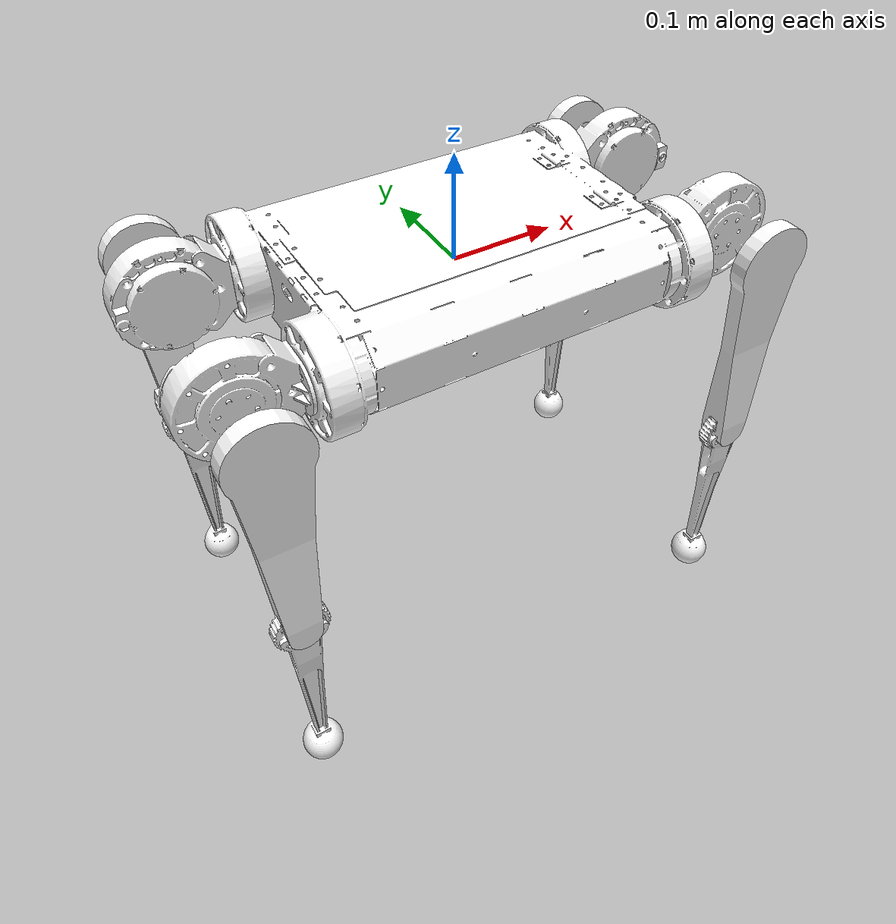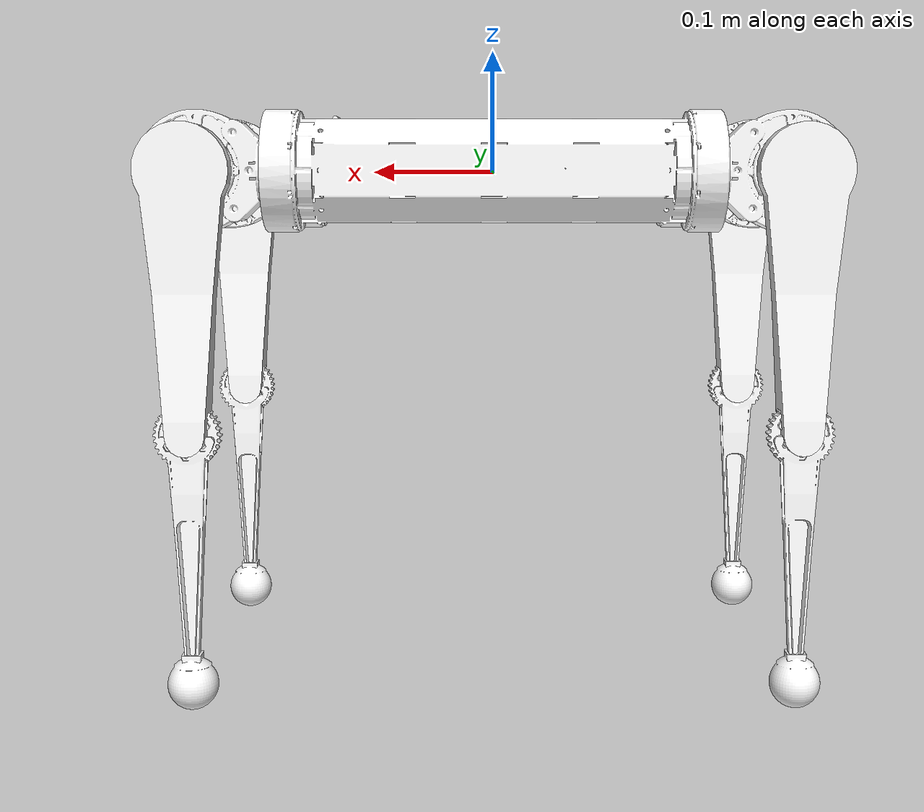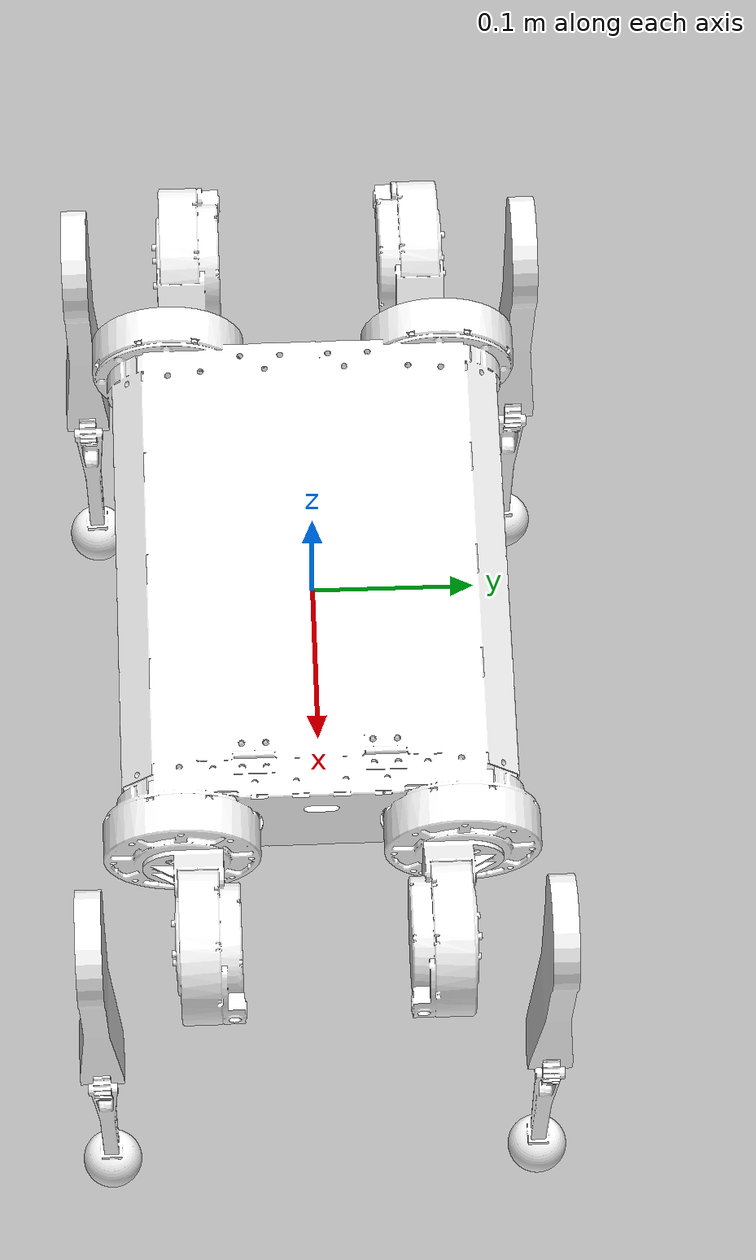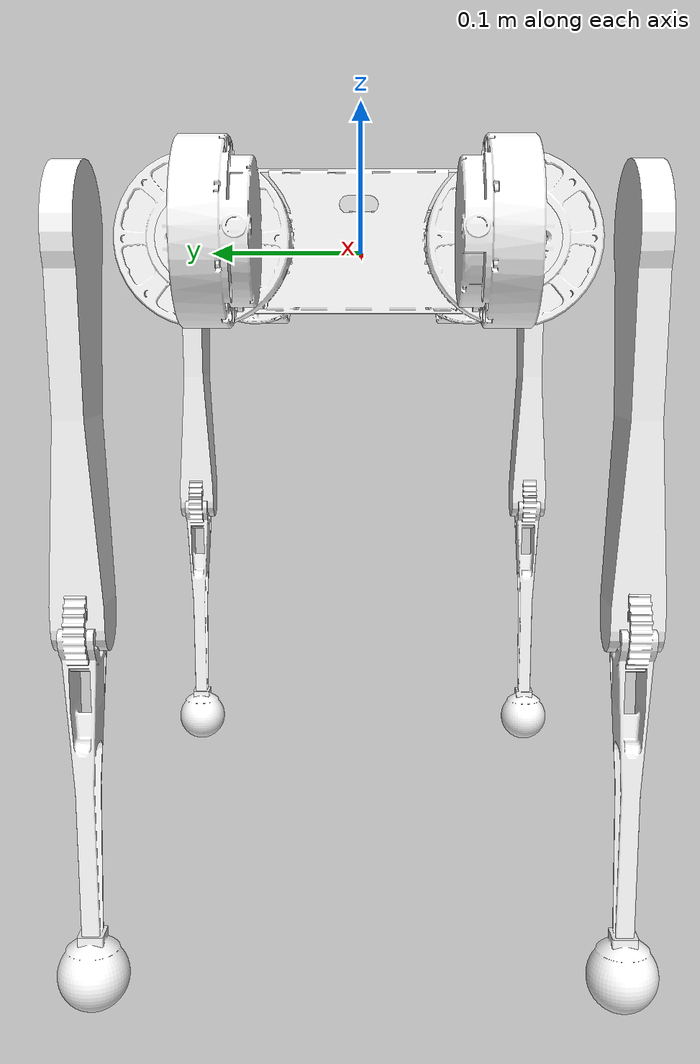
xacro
<?xml version="1.0" encoding="utf-8"?>

<robot name="dog"
    xmlns:xacro="http://www.ros.org/wiki/xacro">

    <xacro:arg name="add_tail" default="false" />

    <xacro:include filename="$(find dog_model)/urdf/dog.xacro" />
    <xacro:include filename="$(find dog_model)/urdf/dog.gazebo" />

    <xacro:build_dog />
    <xacro:dog_gazebo_config />

    <xacro:if value="$(arg add_tail)" >
        <xacro:include filename="$(find dog_model)/urdf/tail.xacro" />
        <xacro:include filename="$(find dog_model)/urdf/tail.gazebo" />

        <xacro:attach_tail parent_name="torso" />
        <xacro:tail_gazebo_config />
    </xacro:if>

</robot>

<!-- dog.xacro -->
<robot
    xmlns:xacro="http://www.ros.org/wiki/xacro">

    <xacro:macro name="build_dog">

        <xacro:include filename="$(find dog_model)/urdf/defines.xacro" />
        <xacro:include filename="$(find dog_model)/urdf/leg.xacro" />
        <xacro:include filename="$(find dog_model)/urdf/materials.xacro" />

        <link
            name="torso">
            <inertial>
                <origin
                    xyz="0.00046238 0  0.00010840"
                    rpy="0 0 0" />
                <mass
                    value="3.588" />
                <inertia
                    ixx="0.02923416"
                    ixy="0"
                    ixz="0.00007328"
                    iyy="0.07723917"
                    iyz="0"
                    izz="0.10235971" />
            </inertial>
            <visual>
                <origin
                    xyz="0 0 0"
                    rpy="0 0 0" />
                <geometry>
                    <mesh
                        filename="package://dog_model/meshes/visualization/torso.stl" />
                </geometry>
                <material
                    name="white" />
            </visual>
            <collision>
                <origin
                    xyz="0 0 0"
                    rpy="0 0 0" />
                <geometry>
                    <box size="${TORSO_COLL_LEN} ${TORSO_COLL_WIDTH} ${TORSO_COLL_HEIGHT}" />
                </geometry>
            </collision>
        </link>

        <link name="fl_base">
            <xacro:dummy_inertial />
        </link>

        <joint name="fl_base_fixed" type="fixed">
            <parent link="torso" />
            <child link="fl_base" />
            <origin xyz="${HIP_POS_X} ${HIP_POS_Y} 0" rpy="0 0 0" />
        </joint>

        <xacro:attach_leg
            leg_name="fl" parent_name="fl_base" xflip="1" yflip="1" />

        <link name="fr_base">
            <xacro:dummy_inertial />
        </link>

        <joint name="fr_base_fixed" type="fixed">
            <parent link="torso" />
            <child link="fr_base" />
            <origin xyz="${HIP_POS_X} ${- HIP_POS_Y} 0" rpy="0 0 0" />
        </joint>

        <xacro:attach_leg
            leg_name="fr" parent_name="fr_base" xflip="1" yflip="-1" />

        <link name="bl_base">
            <xacro:dummy_inertial />
        </link>

        <joint name="bl_base_fixed" type="fixed">
            <parent link="torso" />
            <child link="bl_base" />
            <origin xyz="${- HIP_POS_X} ${HIP_POS_Y} 0" rpy="0 0 0" />
        </joint>

        <xacro:attach_leg
            leg_name="bl" parent_name="bl_base" xflip="-1" yflip="1" />

        <link name="br_base">
            <xacro:dummy_inertial />
        </link>

        <joint name="br_base_fixed" type="fixed">
            <parent link="torso" />
            <child link="br_base" />
            <origin xyz="${- HIP_POS_X} ${- HIP_POS_Y} 0" rpy="0 0 0" />
        </joint>

        <xacro:attach_leg
            leg_name="br" parent_name="br_base" xflip="-1" yflip="-1" />

    </xacro:macro>

</robot>

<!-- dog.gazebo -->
<robot
    xmlns:xacro="http://www.ros.org/wiki/xacro">

    <xacro:macro name="dog_gazebo_config">

        <xacro:arg name="hang_up" default="false" />

        <!-- this joint is only for debugging/testing purpose -->
        <xacro:if value="$(arg hang_up)" >
            <link name="world" />
            <joint
                name="fixed_body"
                type="fixed">
                <origin
                    xyz="0 0 0.5"
                    rpy="0 0 0" />
                <parent link="world" />
                <child link="dummy" />
            </joint>
        </xacro:if>

        <link name="dummy" />
        <joint name="dummy_joint" type="fixed">
            <parent link="dummy" />
            <child link="torso" />
        </joint>

        <gazebo>
            <!-- gazebo_ros_control will load controller for the motor -->
            <plugin name="gazebo_ros_control" filename="libgazebo_ros_control.so">
                <robotNamespace>/dog</robotNamespace>
                <robotSimType>gazebo_ros_control/DefaultRobotHWSim</robotSimType>
                <legacyModeNS>true</legacyModeNS>
            </plugin>

            <!-- p3d plugin provides odometry, which can be used as ground truth & converted into tf -->
            <plugin name="p3d_base_controller" filename="libgazebo_ros_p3d.so">
                <alwaysOn>true</alwaysOn>
                <updateRate>1000.0</updateRate>
                <bodyName>torso</bodyName>
                <topicName>ground_truth/state</topicName>
                <frameName>world</frameName>
                <xyzOffsets>0 0 0</xyzOffsets>
                <rpyOffsets>0 0 0</rpyOffsets>
            </plugin>
        </gazebo>

        <gazebo reference="torso">
            <gravity>true</gravity>
            <sensor name="imu_sensor" type="imu">
                <always_on>true</always_on>
                <update_rate>500</update_rate>
                <visualize>true</visualize>
                <topic>__default_topic__</topic>
                <plugin filename="libgazebo_ros_imu_sensor.so" name="imu_plugin">
                    <topicName>/dog/imu</topicName>
                    <bodyName>torso</bodyName>
                    <updateRateHZ>500</updateRateHZ>
                    <gaussianNoise>0.1</gaussianNoise>
                    <xyzOffset>0 0 0</xyzOffset>
                    <rpyOffset>0 0 0</rpyOffset>
                    <frameName>torso</frameName>
                </plugin>
            </sensor>
            <selfCollide>true</selfCollide>
            <kp>1000.0</kp>
            <kd>100.0</kd>
        </gazebo>

        <xacro:macro name="EnableSelfCollide" params="link">
            <gazebo reference="${link}">
                <selfCollide>true</selfCollide>
                <kp>1000000.0</kp>
                <kd>100.0</kd>
            </gazebo>
        </xacro:macro>

        <xacro:macro name="AddContactSensor" params="prefix">
            <gazebo reference="${prefix}_foot">
                <sensor type="contact" name="${prefix}_foot_contact_sensor">
                    <update_rate>1000.0</update_rate>
                    <contact>
                        <collision>${prefix}_shin_fixed_joint_lump__${prefix}_foot_collision_collision_1</collision>
                    </contact>
                    <plugin name="${prefix}_foot_gazebo_ros_bumper_controller" filename="libgazebo_ros_bumper.so">
                        <alwaysOn>true</alwaysOn>
                        <frameName>${prefix}_foot</frameName>
                        <updateRate>1000</updateRate>
                        <bumperTopicName>/ground_truth/${prefix}_foot_contact</bumperTopicName>
                    </plugin>
                </sensor>
            </gazebo>
        </xacro:macro>

        <xacro:macro name="AddTrans" params="joint id">
            <transmission name="trans${id}">
                <type>transmission_interface/SimpleTransmission</type>
                <joint name="${joint}">
                    <hardwareInterface>hardware_interface/EffortJointInterface</hardwareInterface>
                </joint>
                <actuator name="motor${id}">
                    <hardwareInterface>hardware_interface/EffortJointInterface</hardwareInterface>
                    <mechanicalReduction>1</mechanicalReduction>
                </actuator>
            </transmission>
        </xacro:macro>

        <xacro:EnableSelfCollide link="fl_hip" />
        <xacro:EnableSelfCollide link="fl_thigh" />
        <xacro:EnableSelfCollide link="fl_shin" />
        <xacro:EnableSelfCollide link="fr_hip" />
        <xacro:EnableSelfCollide link="fr_thigh" />
        <xacro:EnableSelfCollide link="fr_shin" />
        <xacro:EnableSelfCollide link="bl_hip" />
        <xacro:EnableSelfCollide link="bl_thigh" />
        <xacro:EnableSelfCollide link="bl_shin" />
        <xacro:EnableSelfCollide link="br_hip" />
        <xacro:EnableSelfCollide link="br_thigh" />
        <xacro:EnableSelfCollide link="br_shin" />

        <xacro:EnableSelfCollide link="fl_foot" />
        <xacro:EnableSelfCollide link="fr_foot" />
        <xacro:EnableSelfCollide link="bl_foot" />
        <xacro:EnableSelfCollide link="br_foot" />

        <xacro:AddContactSensor prefix="fl" />
        <xacro:AddContactSensor prefix="fr" />
        <xacro:AddContactSensor prefix="bl" />
        <xacro:AddContactSensor prefix="br" />

        <xacro:AddTrans joint="fl_hip_x" id="1" />
        <xacro:AddTrans joint="fl_hip_y" id="2" />
        <xacro:AddTrans joint="fl_knee"  id="3" />
        <xacro:AddTrans joint="fr_hip_x" id="4" />
        <xacro:AddTrans joint="fr_hip_y" id="5" />
        <xacro:AddTrans joint="fr_knee"  id="6" />
        <xacro:AddTrans joint="bl_hip_x" id="7" />
        <xacro:AddTrans joint="bl_hip_y" id="8" />
        <xacro:AddTrans joint="bl_knee"  id="9" />
        <xacro:AddTrans joint="br_hip_x" id="10" />
        <xacro:AddTrans joint="br_hip_y" id="11" />
        <xacro:AddTrans joint="br_knee"  id="12" />

    </xacro:macro>
</robot>

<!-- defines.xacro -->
<robot
    xmlns:xacro="http://www.ros.org/wiki/xacro">

    <xacro:property name="M_PI" value="3.1415926535897931" />

    <xacro:property name="HIP_POS_X" value="0.2335" />
    <xacro:property name="HIP_POS_Y" value="0.0855" />
    <xacro:property name="HIP_LEN" value="0.0575" />
    <xacro:property name="THIGH_LEN" value="0.2" />
    <xacro:property name="SHIN_LEN" value="0.195" />
    <xacro:property name="FOOT_RADIUS" value="0.0195" />
    <xacro:property name="TAIL_POS_X" value="-0.057" />
    <xacro:property name="TAIL_POS_Z" value="0.0805" />
    <xacro:property name="TAIL_ROOT_LEN" value="0.15" />
    <xacro:property name="TAIL_MID_LEN" value="0.255" />
    <xacro:property name="TAIL_END_LEN" value="0.2" />

    <xacro:property name="MOTOR_FRICTION" value="0.09" />
    <xacro:property name="MOTOR_DAMPING" value="0.04" />
    <xacro:property name="MOTOR_TORQUE_MAX" value="17" />
    <xacro:property name="MOTOR_VELOCITY_MAX" value="40" />
    <xacro:property name="MOTOR_TORQUE_KP" value="100" />
    <xacro:property name="MOTOR_TORQUE_KD" value="1000" />

    <xacro:property name="TORSO_COLL_LEN" value="0.31" />
    <xacro:property name="TORSO_COLL_WIDTH" value="0.201" />
    <xacro:property name="TORSO_COLL_HEIGHT" value="0.08" />
    <xacro:property name="MOTOR_COLL_RADIUS" value="0.05" />
    <xacro:property name="HIP_COLL_LEN" value="0.094" />
    <xacro:property name="THIGH_COLL_LEN" value="0.272" />
    <xacro:property name="THIGH_COLL_WIDTH" value="0.072" />
    <xacro:property name="THIGH_COLL_HEIGHT" value="0.028" />
    <xacro:property name="SHIN_COLL_RADIUS" value="0.01" />
    <xacro:property name="TAIL_ROOT_COLL_LEN" value="0.198" />
    <xacro:property name="TAIL_ROOT_COLL_WIDTH" value="0.01" />
    <xacro:property name="TAIL_ROOT_COLL_HEIGHT" value="0.015" />
    <xacro:property name="TAIL_ROOT_COLL_CENTER_X" value="-0.03" />
    <xacro:property name="TAIL_ROOT_COLL_CENTER_Z" value="-0.0115" />
    <xacro:property name="TAIL_MID_COLL_LEN" value="0.31" />
    <xacro:property name="TAIL_MID_COLL_WIDTH" value="0.04" />
    <xacro:property name="TAIL_MID_COLL_HEIGHT" value="0.055" />
    <xacro:property name="TAIL_END_COLL_LEN" value="0.056" />
    <xacro:property name="TAIL_END_COLL_CENTER_Y" value="-0.01" />

    <xacro:macro name="dummy_inertial">
        <inertial>
            <origin
                xyz="0 0 0"
                rpy="0 0 0" />
            <mass
                value="1E-5" />
            <inertia
                ixx="1E-9"
                ixy="0"
                ixz="0"
                iyy="1E-9"
                iyz="0"
                izz="1E-9" />
        </inertial>
    </xacro:macro>

    <xacro:macro name="motor_joint"
        params="joint *origin parent child *axis lower upper">
        <joint
            name="${joint}"
            type="revolute">
            <xacro:insert_block name="origin" />
            <parent link="${parent}" />
            <child link="${child}" />
            <xacro:insert_block name="axis" />
            <dynamics
                damping="${MOTOR_DAMPING}"
                friction="${MOTOR_FRICTION}" />
            <limit
                lower="${lower}"
                upper="${upper}"
                effort="${MOTOR_TORQUE_MAX}"
                velocity="${MOTOR_VELOCITY_MAX}" />
            <safety_controller
                soft_lower_limit="${lower + 0.01}"
                soft_upper_limit="${upper - 0.01}"
                k_velocity="${MOTOR_TORQUE_KD}"
                k_position="${MOTOR_TORQUE_KP}" />
        </joint>
    </xacro:macro>
</robot>

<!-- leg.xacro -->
<robot
    xmlns:xacro="http://www.ros.org/wiki/xacro">

    <xacro:macro name="attach_leg" params="leg_name parent_name xflip yflip">

        <xacro:include filename="$(find dog_model)/urdf/defines.xacro" />

        <link name="${leg_name}_hip">
            <inertial>
                <origin
                    xyz="${- 0.00265550 * xflip} ${- 0.01336802 * yflip} 0.00003673"
                    rpy="0 0 0" />
                <mass
                    value="0.6493" />
                <inertia
                    ixx="0.00042662"
                    ixy="${- 0.00001327 * xflip * yflip}"
                    ixz="${- 0.00007996 * xflip}"
                    iyy="0.00047136"
                    iyz="${0.00000020 * yflip}"
                    izz="0.00066694" />
                </inertial>
            <visual>
                <xacro:if value="${xflip > 0}">
                    <xacro:property name="hip_model_pitch" value="0" />
                </xacro:if>
                <xacro:unless value="${xflip > 0}">
                    <xacro:property name="hip_model_pitch" value="${M_PI}" />
                </xacro:unless>
                <xacro:if value="${yflip > 0}">
                    <xacro:property name="hip_model_roll" value="0" />
                </xacro:if>
                <xacro:unless value="${yflip > 0}">
                    <xacro:property name="hip_model_roll" value="${M_PI}" />
                </xacro:unless>
                <origin
                    xyz="0 0 0"
                    rpy="${hip_model_roll} ${hip_model_pitch} 0" />
                <geometry>
                    <mesh
                        filename="package://dog_model/meshes/visualization/hip.stl" />
                </geometry>
                <material
                    name="white" />
            </visual>
            <collision>
                <origin
                    xyz="0 0 0"
                    rpy="${M_PI / 2} 0 0" />
                <geometry>
                    <cylinder radius="${MOTOR_COLL_RADIUS}" length="${HIP_COLL_LEN}" />
                </geometry>
            </collision>
        </link>

        <xacro:motor_joint joint="${leg_name}_hip_x"
            parent="${parent_name}" child="${leg_name}_hip"
            lower="-3.00" upper="3.00">
            <origin xyz="0 0 0" rpy="0 0 0" />
            <axis xyz="${yflip} 0 0" />
        </xacro:motor_joint>

        <link name="${leg_name}_thigh">
            <inertial>
                <origin
                    xyz="${- 0.00004514 * xflip} ${- 0.02235964 * yflip} -0.01345988"
                    rpy="0 0 0" />
                <mass
                    value="0.8609" />
                <inertia
                    ixx="0.00205953"
                    ixy="${- 0.00000043 * xflip * yflip}"
                    ixz="${- 0.00000016 * xflip}"
                    iyy="0.00224921"
                    iyz="${- 0.00025874 * yflip}"
                    izz="0.00061479" />
                </inertial>
            <visual>
                <xacro:if value="${yflip > 0}">
                    <xacro:property name="thigh_model_yaw" value="0" />
                </xacro:if>
                <xacro:unless value="${yflip > 0}">
                    <xacro:property name="thigh_model_yaw" value="${M_PI}" />
                </xacro:unless>
                <origin
                    xyz="0 0 0"
                    rpy="0 0 ${thigh_model_yaw}" />
                <geometry>
                    <mesh
                        filename="package://dog_model/meshes/visualization/thigh.stl" />
                </geometry>
                <material name="white" />
            </visual>
            <collision>
                <origin
                    xyz="0 0 ${- THIGH_LEN / 2}"
                    rpy="0 0 0" />
                <geometry>
                    <box size="${THIGH_COLL_WIDTH} ${THIGH_COLL_HEIGHT} ${THIGH_COLL_LEN}" />
                </geometry>
            </collision>
        </link>

        <xacro:motor_joint joint="${leg_name}_hip_y"
            parent="${leg_name}_hip" child="${leg_name}_thigh"
            lower="-3.89" upper="1.50">
            <origin xyz="0 ${HIP_LEN * yflip} 0" rpy="0 0 0" />
            <axis xyz="0 ${xflip} 0" />
        </xacro:motor_joint>

        <link name="${leg_name}_shin">
            <inertial>
                <origin
                    xyz="0 ${- 0.00001159 * yflip} 0.09304793"
                    rpy="0 0 0" />
                <mass
                    value="0.1199" />
                <inertia
                    ixx="0.00083588"
                    ixy="0"
                    ixz="0"
                    iyy="0.00084294"
                    iyz="${- 0.00000012 * yflip}"
                    izz="0.00001603" />
                </inertial>
            <visual>
                <xacro:if value="${yflip > 0}">
                    <xacro:property name="shin_model_yaw" value="0" />
                </xacro:if>
                <xacro:unless value="${yflip > 0}">
                    <xacro:property name="shin_model_yaw" value="${M_PI}" />
                </xacro:unless>
                <origin
                    xyz="0 0 0"
                    rpy="0 0 ${shin_model_yaw}" />
                <geometry>
                    <mesh
                        filename="package://dog_model/meshes/visualization/shin.stl" />
                </geometry>
                <material
                    name="white" />
            </visual>
            <collision>
                <origin
                    xyz="0 0 ${- SHIN_LEN / 2}"
                    rpy="0 0 0" />
                <geometry>
                    <cylinder radius="${SHIN_COLL_RADIUS}" length="${SHIN_LEN}" />
                </geometry>
            </collision>
        </link>

        <xacro:motor_joint joint="${leg_name}_knee"
            parent="${leg_name}_thigh" child="${leg_name}_shin"
            lower="-2.70" upper="2.70">
            <origin xyz="0 0 ${- THIGH_LEN}" rpy="0 0 0" />
            <axis xyz="0 ${xflip} 0" />
        </xacro:motor_joint>

        <link
            name="${leg_name}_foot">
            <xacro:dummy_inertial />
            <collision name="${leg_name}_foot_collision">
                <origin
                    xyz="0 0 0"
                    rpy="0 0 0" />
                <geometry>
                    <sphere
                        radius="${FOOT_RADIUS}" />
                </geometry>
            </collision>
        </link>

        <joint
            name="${leg_name}_fixed_foot"
            type="fixed">
            <origin
                xyz="0 0 ${- SHIN_LEN}"
                rpy="0 0 0" />
            <parent
                link="${leg_name}_shin" />
            <child
                link="${leg_name}_foot" />
        </joint>

    </xacro:macro>

</robot>

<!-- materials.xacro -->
<robot>

    <material name="black">
        <color rgba="0.0 0.0 0.0 1.0"/>
    </material>

    <material name="blue">
        <color rgba="0.0 0.0 0.8 1.0"/>
    </material>

    <material name="green">
        <color rgba="0.0 0.8 0.0 1.0"/>
    </material>

    <material name="grey">
        <color rgba="0.2 0.2 0.2 1.0"/>
    </material>

    <material name="silver">
        <color rgba="${233/255} ${233/255} ${216/255} 1.0"/>
    </material>

    <material name="orange">
        <color rgba="${255/255} ${108/255} ${10/255} 1.0"/>
    </material>

    <material name="brown">
        <color rgba="${222/255} ${207/255} ${195/255} 1.0"/>
    </material>

    <material name="white_gray">
        <color rgba="${210/255} ${210/255} ${210/255} 1.0"/>
    </material>

    <material name="gold">
        <color rgba="${207/255} ${173/255} ${77/255} 1.0"/>
    </material>

    <material name="white_blue">
        <color rgba="${118/255} ${204/255} ${253/255} 1.0"/>
    </material>

     <material name="white_black">
        <color rgba="${126/255} ${126/255} ${126/255} 1.0"/>
    </material>

    <material name="red">
        <color rgba="0.8 0.0 0.0 1.0"/>
    </material>

    <material name="white">
        <color rgba="1.0 1.0 1.0 1.0"/>
    </material>

</robot>
